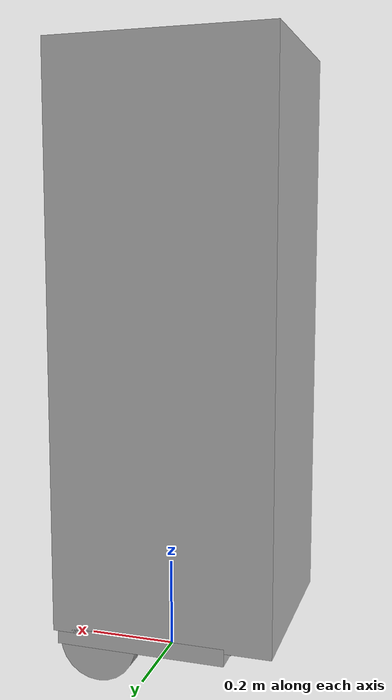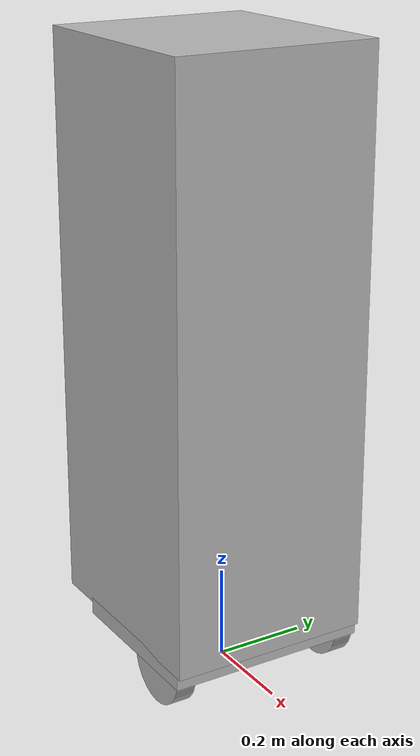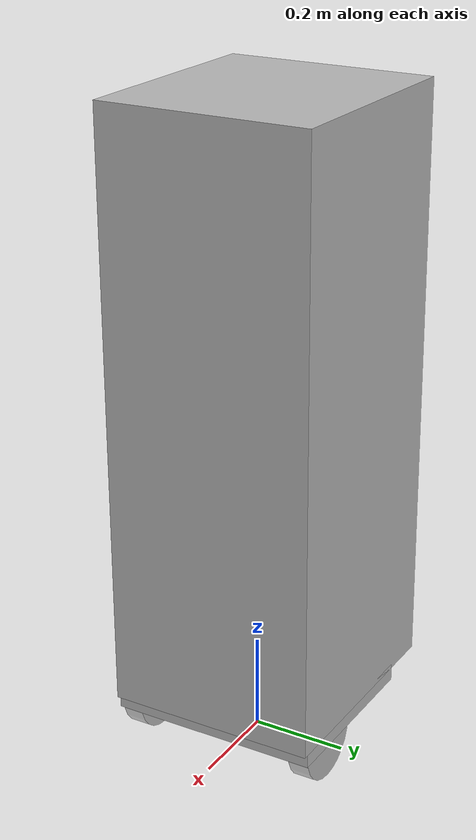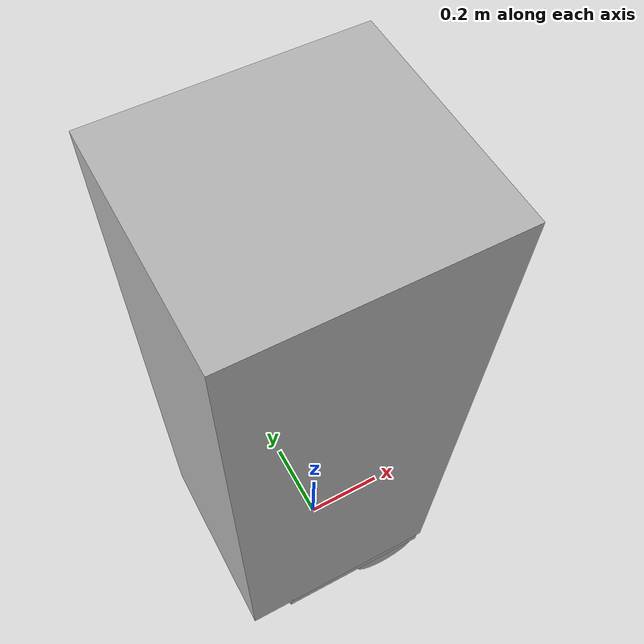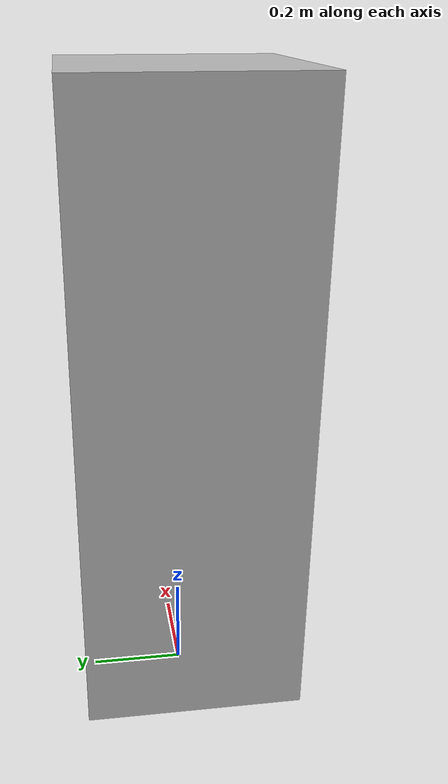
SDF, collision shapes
<sdf version='1.11'>
  <model name='sitoe_robot'>
    <link name='base_footprint'>
      <inertial>
        <pose>-0.025894328406169679 7.3352662406812644e-18 0.39492358611825212 0 0 0</pose>
        <mass>15.56</mass>
        <inertia>
          <ixx>2.7988475668480599</ixx>
          <ixy>4.9671955664951749e-19</ixy>
          <ixz>0.090257798723975019</ixz>
          <iyy>2.800601043668618</iyy>
          <iyz>-2.5567953474338141e-17</iyz>
          <izz>0.49443472322055693</izz>
        </inertia>
      </inertial>
      <collision name='base_footprint_fixed_joint_lump__base_link_collision'>
        <pose>0 0 0.091600000000000001 1.5707963267948959 -5.5511151231257827e-17 1.5707963267948959</pose>
        <geometry>
          <box>
            <size>0.44369999999999998 0.037850000000000002 0.37369999999999998</size>
          </box>
        </geometry>
        <surface>
          <contact>
            <ode/>
          </contact>
          <friction>
            <ode>
              <mu>0.20000000000000001</mu>
              <mu2>0.20000000000000001</mu2>
            </ode>
          </friction>
        </surface>
      </collision>
      <collision name='base_footprint_fixed_joint_lump__caster_wheel_link_collision_1'>
        <pose>-0.13300000000000001 2.775557561562891e-17 0.0407 0 0 0</pose>
        <geometry>
          <sphere>
            <radius>0.050799999999999998</radius>
          </sphere>
        </geometry>
      </collision>
      <collision name='base_footprint_fixed_joint_lump__top_chassis_link_collision_2'>
        <pose>-0.045434099999999998 6.9388939039072284e-18 0.72489000000000003 1.5707963267948959 -5.5511151231257827e-17 1.5707963267948959</pose>
        <geometry>
          <box>
            <size>0.44369999999999998 1.248 0.48580000000000001</size>
          </box>
        </geometry>
      </collision>
      <collision name='base_footprint_fixed_joint_lump__lidar_link_collision_3'>
        <pose>-0.021000000000000001 3.4694469519536142e-18 0.058749999999999997 0 0 0</pose>
        <geometry>
          <cylinder>
            <length>0.041300000000000003</length>
            <radius>0.027799999999999998</radius>
          </cylinder>
        </geometry>
        <surface>
          <contact>
            <ode/>
          </contact>
          <friction>
            <ode/>
          </friction>
        </surface>
      </collision>
      <visual name='base_footprint_fixed_joint_lump__base_link_visual'>
        <pose>0 0 0.038100000000000002 1.5707963267948959 -5.5511151231257827e-17 1.5707963267948959</pose>
        <geometry>
          <mesh>
            <scale>1 1 1</scale>
            <uri>model://parc_robot_description/meshes/sitoe_chassis_bottom.dae</uri>
          </mesh>
        </geometry>
      </visual>
      <visual name='base_footprint_fixed_joint_lump__bottom_camera_link_visual_1'>
        <pose>-0.0009486372867090892 5.5619571448506377e-17 0.03811100016133815 1.5707963267948957 0 1.570796326794897</pose>
        <geometry>
          <mesh>
            <scale>1 1 1</scale>
            <uri>model://parc_robot_description/meshes/realsense_d435_bottom.dae</uri>
          </mesh>
        </geometry>
      </visual>
      <visual name='base_footprint_fixed_joint_lump__caster_wheel_link_visual_2'>
        <pose>6.1629758220391547e-33 2.775557561562891e-17 0.038100000000000002 1.5707963267948959 -5.5511151231257827e-17 1.5707963267948959</pose>
        <geometry>
          <mesh>
            <scale>1 1 1</scale>
            <uri>model://parc_robot_description/meshes/caster_wheel.dae</uri>
          </mesh>
        </geometry>
      </visual>
      <visual name='base_footprint_fixed_joint_lump__top_chassis_link_visual_3'>
        <pose>0 0 0.038100000000000002 1.5707963267948959 -5.5511151231257827e-17 1.5707963267948959</pose>
        <geometry>
          <mesh>
            <scale>1 1 1</scale>
            <uri>model://parc_robot_description/meshes/sitoe_chassis_top.dae</uri>
          </mesh>
        </geometry>
      </visual>
      <visual name='base_footprint_fixed_joint_lump__top_camera_link_visual_4'>
        <pose>-6.9388939039072253e-18 1.387778780781446e-17 0.038100000000000002 1.5707963267948959 -5.5511151231257827e-17 1.5707963267948959</pose>
        <geometry>
          <mesh>
            <scale>1 1 1</scale>
            <uri>model://parc_robot_description/meshes/realsense_d435_top.dae</uri>
          </mesh>
        </geometry>
      </visual>
      <visual name='base_footprint_fixed_joint_lump__lidar_link_visual_5'>
        <pose>-0.021000000000000001 -0.021000000000000001 0.038100000000000002 1.5707963267948959 0 0</pose>
        <geometry>
          <mesh>
            <scale>1 1 1</scale>
            <uri>model://parc_robot_description/meshes/rplidarc1.dae</uri>
          </mesh>
        </geometry>
      </visual>
      <sensor name='base_collision_sensor' type='contact'>
        <contact>
          <collision>base_footprint_fixed_joint_lump__base_link_collision</collision>
          <topic>base_collisions</topic>
        </contact>
        <always_on>true</always_on>
        <update_rate>5</update_rate>
        <pose>0 0 0.038100000000000002 0 0 1.5708</pose>
      </sensor>
      <sensor name='bottom_camera_color' type='camera'>
        <always_on>true</always_on>
        <visualize>false</visualize>
        <update_rate>30</update_rate>
        <topic>bottom_camera_color/image_raw</topic>
        <camera name='bottom_camera_color'>
          <camera_info_topic>bottom_camera_color/camera_info</camera_info_topic>
          <horizontal_fov>1.5700000000000001</horizontal_fov>
          <image>
            <width>640</width>
            <height>480</height>
            <format>R8G8B8</format>
          </image>
          <clip>
            <near>0.10000000000000001</near>
            <far>100</far>
          </clip>
          <noise>
            <type>gaussian</type>
            <mean>0</mean>
            <stddev>0.0070000000000000001</stddev>
          </noise>
        </camera>
        <pose>0.076999999999999999 0.014999999999999999 0.58309999999999995 -4.7827071190132677e-17 1.0471999999999999 -3.6732099999999988e-06</pose>
        <gz_frame_id>bottom_camera_color_optical_frame</gz_frame_id>
      </sensor>
      <sensor name='bottom_camera_depth' type='rgbd_camera'>
        <always_on>true</always_on>
        <visualize>false</visualize>
        <update_rate>15</update_rate>
        <topic>bottom_camera_depth</topic>
        <camera name='bottom_camera_depth'>
          <camera_info_topic>bottom_camera_depth/camera_info</camera_info_topic>
          <horizontal_fov>1.5700000000000001</horizontal_fov>
          <image>
            <width>640</width>
            <height>480</height>
            <format>B8G8R8</format>
          </image>
          <clip>
            <near>0.10000000000000001</near>
            <far>100</far>
          </clip>
          <noise>
            <type>gaussian</type>
            <mean>0</mean>
            <stddev>0.10000000000000001</stddev>
          </noise>
        </camera>
        <pose>0.076999999999999999 -1.3877799999999999e-17 0.58309999999999995 -4.7827071190132677e-17 1.0471999999999999 -3.6732099999999988e-06</pose>
        <gz_frame_id>bottom_camera_depth</gz_frame_id>
      </sensor>
      <sensor name='top_camera_color' type='camera'>
        <always_on>true</always_on>
        <visualize>false</visualize>
        <update_rate>30</update_rate>
        <topic>top_camera_color/image_raw</topic>
        <camera name='top_camera_color'>
          <camera_info_topic>top_camera_color/camera_info</camera_info_topic>
          <horizontal_fov>1.5700000000000001</horizontal_fov>
          <image>
            <width>640</width>
            <height>480</height>
            <format>R8G8B8</format>
          </image>
          <clip>
            <near>0.10000000000000001</near>
            <far>100</far>
          </clip>
          <noise>
            <type>gaussian</type>
            <mean>0</mean>
            <stddev>0.0070000000000000001</stddev>
          </noise>
        </camera>
        <pose>-0.052499999999999998 0.014999999999999999 1.0125999999999999 0 0 -3.6732099999999997e-06</pose>
        <gz_frame_id>top_camera_color_optical_frame</gz_frame_id>
      </sensor>
      <sensor name='top_camera_depth' type='rgbd_camera'>
        <always_on>true</always_on>
        <visualize>false</visualize>
        <update_rate>15</update_rate>
        <topic>top_camera_depth</topic>
        <camera name='top_camera_depth'>
          <camera_info_topic>top_camera_depth/camera_info</camera_info_topic>
          <horizontal_fov>1.5700000000000001</horizontal_fov>
          <image>
            <width>640</width>
            <height>480</height>
            <format>B8G8R8</format>
          </image>
          <clip>
            <near>0.10000000000000001</near>
            <far>100</far>
          </clip>
          <noise>
            <type>gaussian</type>
            <mean>0</mean>
            <stddev>0.10000000000000001</stddev>
          </noise>
        </camera>
        <pose>-0.052499999999999998 1.04083e-17 1.0125999999999999 0 0 -3.6732099999999997e-06</pose>
        <gz_frame_id>top_camera_depth</gz_frame_id>
      </sensor>
      <sensor name='imu_sensor' type='imu'>
        <always_on>true</always_on>
        <update_rate>100</update_rate>
        <visualize>true</visualize>
        <topic>imu</topic>
        <imu>
          <angular_velocity>
            <x>
              <noise type='gaussian'>
                <mean>0</mean>
                <stddev>0.00020000000000000001</stddev>
              </noise>
            </x>
            <y>
              <noise type='gaussian'>
                <mean>0</mean>
                <stddev>0.00020000000000000001</stddev>
              </noise>
            </y>
            <z>
              <noise type='gaussian'>
                <mean>0</mean>
                <stddev>0.00020000000000000001</stddev>
              </noise>
            </z>
          </angular_velocity>
          <linear_acceleration>
            <x>
              <noise type='gaussian'>
                <mean>0</mean>
                <stddev>0.017000000000000001</stddev>
              </noise>
            </x>
            <y>
              <noise type='gaussian'>
                <mean>0</mean>
                <stddev>0.017000000000000001</stddev>
              </noise>
            </y>
            <z>
              <noise type='gaussian'>
                <mean>0</mean>
                <stddev>0.017000000000000001</stddev>
              </noise>
            </z>
          </linear_acceleration>
          <orientation>
            <x>
              <noise type='gaussian'>
                <mean>0.0</mean>
                <stddev>2e-3</stddev>
              </noise>
            </x>
            <y>
              <noise type='gaussian'>
                <mean>0.0</mean>
                <stddev>2e-3</stddev>
              </noise>
            </y>
            <z>
              <noise type='gaussian'>
                <mean>0.0</mean>
                <stddev>2e-3</stddev>
              </noise>
            </z>
          </orientation>
        </imu>
        <pose>0.02 -3.4694499999999997e-18 0.092100000000000001 0 0 -3.6732099999999997e-06</pose>
        <gravity>true</gravity>
        <gz_frame_id>imu_link</gz_frame_id>
      </sensor>
      <sensor name='rplidar_c1' type='gpu_lidar'>
        <always_on>true</always_on>
        <visualize>true</visualize>
        <update_rate>10</update_rate>
        <topic>scan</topic>
        <ray>
          <scan>
            <horizontal>
              <samples>360</samples>
              <min_angle>-3.1400000000000001</min_angle>
              <max_angle>3.1400000000000001</max_angle>
              <resolution>1</resolution>
            </horizontal>
          </scan>
          <range>
            <min>0.050000000000000003</min>
            <max>12</max>
            <resolution>0.014999999999999999</resolution>
          </range>
          <noise>
            <type>gaussian</type>
            <mean>0</mean>
            <stddev>0.01</stddev>
          </noise>
        </ray>
        <pose>-0.021000000000000001 3.4694499999999997e-18 0.048099999999999997 2.0667289881659856e-18 -0.043633200000000004 -3.6732100000000001e-06</pose>
        <gz_frame_id>lidar_link</gz_frame_id>
      </sensor>
    </link>
    <joint name='left_wheel_joint' type='revolute'>
      <pose relative_to='base_footprint'>0.095000000000000057 0.19649 0.085699999999999998 1.5707963267948957 -1.5707963267948966 0</pose>
      <parent>base_footprint</parent>
      <child>left_wheel_link</child>
      <axis>
        <xyz>0 0 -1</xyz>
        <limit>
          <lower>-inf</lower>
          <upper>inf</upper>
        </limit>
        <dynamics>
          <spring_reference>0</spring_reference>
          <spring_stiffness>0</spring_stiffness>
        </dynamics>
      </axis>
    </joint>
    <link name='left_wheel_link'>
      <pose relative_to='left_wheel_joint'>0 0 0 0 0 0</pose>
      <inertial>
        <pose>0 0 0 0 0 0</pose>
        <mass>2.2000000000000002</mass>
        <inertia>
          <ixx>0.0044324793333333336</ixx>
          <ixy>0</ixy>
          <ixz>0</ixz>
          <iyy>0.0044324793333333336</iyy>
          <iyz>0</iyz>
          <izz>0.0081355999999999998</izz>
        </inertia>
      </inertial>
      <collision name='left_wheel_link_collision'>
        <pose>0 0 0 0 0 0</pose>
        <geometry>
          <cylinder>
            <length>0.044600000000000001</length>
            <radius>0.085999999999999993</radius>
          </cylinder>
        </geometry>
        <surface>
          <contact>
            <ode>
              <kp>10000000</kp>
              <kd>1</kd>
              <min_depth>0.001</min_depth>
            </ode>
          </contact>
          <friction>
            <ode>
              <mu>0.90000000000000002</mu>
              <mu2>0.69999999999999996</mu2>
            </ode>
          </friction>
        </surface>
      </collision>
      <visual name='left_wheel_link_visual'>
        <pose>-0.095600000000000004 -0.043499999999999997 0.19095999999999999 0 1.5707963267948966 0</pose>
        <geometry>
          <mesh>
            <scale>1 1 1</scale>
            <uri>model://parc_robot_description/meshes/left_wheel.dae</uri>
          </mesh>
        </geometry>
      </visual>
      <sensor name='left_wheel_collision_sensor' type='contact'>
        <contact>
          <collision>left_wheel_link_collision</collision>
          <topic>left_wheel_collisions</topic>
        </contact>
        <always_on>true</always_on>
        <update_rate>5</update_rate>
      </sensor>
    </link>
    <joint name='right_wheel_joint' type='revolute'>
      <pose relative_to='base_footprint'>0.094499999999999973 -0.19649 0.085699999999999998 -1.5707963267948957 1.5707963267948966 0</pose>
      <parent>base_footprint</parent>
      <child>right_wheel_link</child>
      <axis>
        <xyz>0 0 1</xyz>
        <limit>
          <lower>-inf</lower>
          <upper>inf</upper>
        </limit>
        <dynamics>
          <spring_reference>0</spring_reference>
          <spring_stiffness>0</spring_stiffness>
        </dynamics>
      </axis>
    </joint>
    <link name='right_wheel_link'>
      <pose relative_to='right_wheel_joint'>0 0 0 0 0 0</pose>
      <inertial>
        <pose>0 0 0 0 0 0</pose>
        <mass>2.2000000000000002</mass>
        <inertia>
          <ixx>0.0044324793333333336</ixx>
          <ixy>0</ixy>
          <ixz>0</ixz>
          <iyy>0.0044324793333333336</iyy>
          <iyz>0</iyz>
          <izz>0.0081355999999999998</izz>
        </inertia>
      </inertial>
      <collision name='right_wheel_link_collision'>
        <pose>0 0 0 0 0 0</pose>
        <geometry>
          <cylinder>
            <length>0.044600000000000001</length>
            <radius>0.085999999999999993</radius>
          </cylinder>
        </geometry>
        <surface>
          <contact>
            <ode>
              <kp>10000000</kp>
              <kd>1</kd>
              <min_depth>0.001</min_depth>
            </ode>
          </contact>
          <friction>
            <ode>
              <mu>0.90000000000000002</mu>
              <mu2>0.69999999999999996</mu2>
            </ode>
          </friction>
        </surface>
      </collision>
      <visual name='right_wheel_link_visual'>
        <pose>0.095600000000000004 -0.043499999999999997 0.19095999999999999 0 -1.5707963267948966 0</pose>
        <geometry>
          <mesh>
            <scale>1 1 1</scale>
            <uri>model://parc_robot_description/meshes/right_wheel.dae</uri>
          </mesh>
        </geometry>
      </visual>
      <sensor name='right_wheel_collision_sensor' type='contact'>
        <contact>
          <collision>right_wheel_link_collision</collision>
          <topic>right_wheel_collisions</topic>
        </contact>
        <always_on>true</always_on>
        <update_rate>5</update_rate>
      </sensor>
    </link>
    <plugin name='gz::sim::systems::DiffDrive' filename='gz-sim-diff-drive-system'>
      <topic>/cmd_vel</topic>
      <left_joint>left_wheel_joint</left_joint>
      <right_joint>right_wheel_joint</right_joint>
      <wheel_separation>0.3409</wheel_separation>
      <wheel_radius>0.08565</wheel_radius>
      <max_velocity>0.5</max_velocity>
      <max_linear_acceleration>1</max_linear_acceleration>
      <min_linear_acceleration>-1</min_linear_acceleration>
      <max_angular_acceleration>2</max_angular_acceleration>
      <min_angular_acceleration>-2</min_angular_acceleration>
      <max_linear_velocity>1.5</max_linear_velocity>
      <min_linear_velocity>-1.5</min_linear_velocity>
      <max_angular_velocity>1</max_angular_velocity>
      <min_angular_velocity>-1</min_angular_velocity>
      <odom_topic>odom</odom_topic>
      <tf_topic>tf</tf_topic>
      <frame_id>odom</frame_id>
      <child_frame_id>base_footprint</child_frame_id>
      <odom_publish_frequency>30</odom_publish_frequency>
    </plugin>
    <plugin name='gz::sim::systems::JointStatePublisher' filename='gz-sim-joint-state-publisher-system'>
      <topic>joint_states</topic>
      <joint_name>left_wheel_joint</joint_name>
      <joint_name>right_wheel_joint</joint_name>
    </plugin>
    <plugin name='gz::sim::systems::PosePublisher' filename='gz-sim-pose-publisher-system'>
      <publish_link_pose>false</publish_link_pose>
      <publish_model_pose>true</publish_model_pose>
      <publish_nested_model_pose>false</publish_nested_model_pose>
      <use_pose_vector_msg>false</use_pose_vector_msg>
      <update_frequency>10</update_frequency>
    </plugin>
    <frame name='bottom_camera_color_optical_joint' attached_to='bottom_camera_color_frame'>
      <pose>0 0 0 -1.5707963267948959 -5.5511151231257827e-17 -1.5707963267948959</pose>
    </frame>
    <frame name='bottom_camera_color_optical_frame' attached_to='bottom_camera_color_optical_joint'>
      <pose>0 0 0 0 0 0</pose>
    </frame>
    <frame name='bottom_camera_color_joint' attached_to='bottom_camera_link'>
      <pose>0 0.014999999999999999 0 0 0 0</pose>
    </frame>
    <frame name='bottom_camera_color_frame' attached_to='bottom_camera_color_joint'>
      <pose>0 0 0 0 0 0</pose>
    </frame>
    <frame name='bottom_camera_depth_optical_joint' attached_to='bottom_camera_depth'>
      <pose>0 0 0 -1.5707963267948959 -5.5511151231257827e-17 -1.5707963267948959</pose>
    </frame>
    <frame name='bottom_camera_depth_optical_frame' attached_to='bottom_camera_depth_optical_joint'>
      <pose>0 0 0 0 0 0</pose>
    </frame>
    <frame name='bottom_camera_depth_joint' attached_to='bottom_camera_link'>
      <pose>0 0 0 0 0 0</pose>
    </frame>
    <frame name='bottom_camera_depth' attached_to='bottom_camera_depth_joint'>
      <pose>0 0 0 0 0 0</pose>
    </frame>
    <frame name='bottom_camera_infra1_optical_joint' attached_to='bottom_camera_infra1_frame'>
      <pose>0 0 0 -1.5707963267948959 -5.5511151231257827e-17 -1.5707963267948959</pose>
    </frame>
    <frame name='bottom_camera_infra1_optical_frame' attached_to='bottom_camera_infra1_optical_joint'>
      <pose>0 0 0 0 0 0</pose>
    </frame>
    <frame name='bottom_camera_infra1_joint' attached_to='bottom_camera_link'>
      <pose>0 0 0 0 0 0</pose>
    </frame>
    <frame name='bottom_camera_infra1_frame' attached_to='bottom_camera_infra1_joint'>
      <pose>0 0 0 0 0 0</pose>
    </frame>
    <frame name='bottom_camera_infra2_optical_joint' attached_to='bottom_camera_infra2_frame'>
      <pose>0 0 0 -1.5707963267948959 -5.5511151231257827e-17 -1.5707963267948959</pose>
    </frame>
    <frame name='bottom_camera_infra2_optical_frame' attached_to='bottom_camera_infra2_optical_joint'>
      <pose>0 0 0 0 0 0</pose>
    </frame>
    <frame name='bottom_camera_infra2_joint' attached_to='bottom_camera_link'>
      <pose>0 -0.050000000000000003 0 0 0 0</pose>
    </frame>
    <frame name='bottom_camera_infra2_frame' attached_to='bottom_camera_infra2_joint'>
      <pose>0 0 0 0 0 0</pose>
    </frame>
    <frame name='bottom_camera_joint' attached_to='base_link'>
      <pose>0 -0.076999999999999999 0.54500000000000004 2.2204460492503141e-16 1.0471975511965979 -1.5707963267948957</pose>
    </frame>
    <frame name='bottom_camera_link' attached_to='bottom_camera_joint'>
      <pose>0 0 0 0 0 0</pose>
    </frame>
    <frame name='caster_wheel_joint' attached_to='base_link'>
      <pose>0 0.13300000000000001 0 0 0 -1.5707963267948959</pose>
    </frame>
    <frame name='caster_wheel_link' attached_to='caster_wheel_joint'>
      <pose>0 0 0 0 0 0</pose>
    </frame>
    <frame name='top_camera_color_optical_joint' attached_to='top_camera_color_frame'>
      <pose>0 0 0 -1.5707963267948959 -5.5511151231257827e-17 -1.5707963267948959</pose>
    </frame>
    <frame name='top_camera_color_optical_frame' attached_to='top_camera_color_optical_joint'>
      <pose>0 0 0 0 0 0</pose>
    </frame>
    <frame name='top_camera_color_joint' attached_to='top_camera_link'>
      <pose>0 0.014999999999999999 0 0 0 0</pose>
    </frame>
    <frame name='top_camera_color_frame' attached_to='top_camera_color_joint'>
      <pose>0 0 0 0 0 0</pose>
    </frame>
    <frame name='top_camera_depth_optical_joint' attached_to='top_camera_depth'>
      <pose>0 0 0 -1.5707963267948959 -5.5511151231257827e-17 -1.5707963267948959</pose>
    </frame>
    <frame name='top_camera_depth_optical_frame' attached_to='top_camera_depth_optical_joint'>
      <pose>0 0 0 0 0 0</pose>
    </frame>
    <frame name='top_camera_depth_joint' attached_to='top_camera_link'>
      <pose>0 0 0 0 0 0</pose>
    </frame>
    <frame name='top_camera_depth' attached_to='top_camera_depth_joint'>
      <pose>0 0 0 0 0 0</pose>
    </frame>
    <frame name='top_camera_infra1_optical_joint' attached_to='top_camera_infra1_frame'>
      <pose>0 0 0 -1.5707963267948959 -5.5511151231257827e-17 -1.5707963267948959</pose>
    </frame>
    <frame name='top_camera_infra1_optical_frame' attached_to='top_camera_infra1_optical_joint'>
      <pose>0 0 0 0 0 0</pose>
    </frame>
    <frame name='top_camera_infra1_joint' attached_to='top_camera_link'>
      <pose>0 0 0 0 0 0</pose>
    </frame>
    <frame name='top_camera_infra1_frame' attached_to='top_camera_infra1_joint'>
      <pose>0 0 0 0 0 0</pose>
    </frame>
    <frame name='top_camera_infra2_optical_joint' attached_to='top_camera_infra2_frame'>
      <pose>0 0 0 -1.5707963267948959 -5.5511151231257827e-17 -1.5707963267948959</pose>
    </frame>
    <frame name='top_camera_infra2_optical_frame' attached_to='top_camera_infra2_optical_joint'>
      <pose>0 0 0 0 0 0</pose>
    </frame>
    <frame name='top_camera_infra2_joint' attached_to='top_camera_link'>
      <pose>0 -0.050000000000000003 0 0 0 0</pose>
    </frame>
    <frame name='top_camera_infra2_frame' attached_to='top_camera_infra2_joint'>
      <pose>0 0 0 0 0 0</pose>
    </frame>
    <frame name='top_camera_joint' attached_to='top_chassis_link'>
      <pose>0 0.052499999999999998 0.97450000000000003 0 0 -1.5707963267948959</pose>
    </frame>
    <frame name='top_camera_link' attached_to='top_camera_joint'>
      <pose>0 0 0 0 0 0</pose>
    </frame>
    <frame name='chassis_joint' attached_to='base_link'>
      <pose>0 0 0 0 0 0</pose>
    </frame>
    <frame name='top_chassis_link' attached_to='chassis_joint'>
      <pose>0 0 0 0 0 0</pose>
    </frame>
    <frame name='imu_joint' attached_to='base_link'>
      <pose>0 -0.02 0.053999999999999999 0 0 -1.5707963267948959</pose>
    </frame>
    <frame name='imu_link' attached_to='imu_joint'>
      <pose>0 0 0 0 0 0</pose>
    </frame>
    <frame name='lidar_joint' attached_to='base_link'>
      <pose>0 0.021000000000000001 0 0 0 -1.5707963267948959</pose>
    </frame>
    <frame name='lidar_link' attached_to='lidar_joint'>
      <pose>0 0 0 0 0 0</pose>
    </frame>
    <frame name='base_joint' attached_to='base_footprint'>
      <pose>0 0 0.038100000000000002 0 0 1.5707963267948959</pose>
    </frame>
    <frame name='base_link' attached_to='base_joint'>
      <pose>0 0 0 0 0 0</pose>
    </frame>
  </model>
</sdf>
